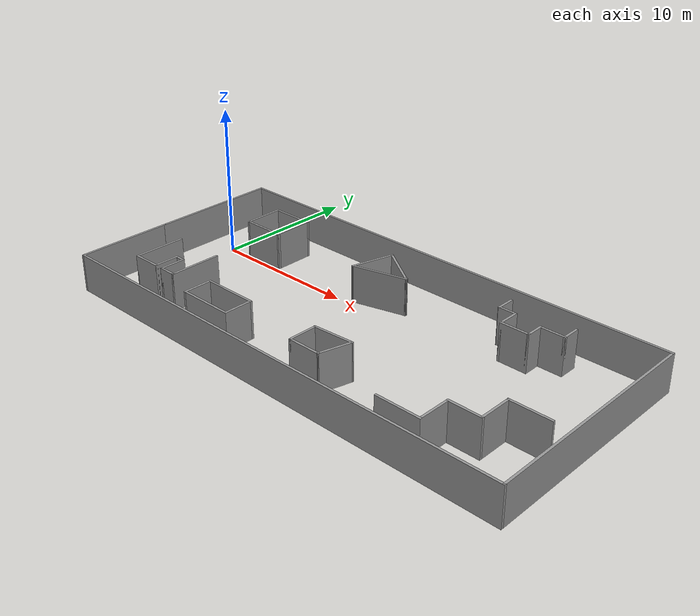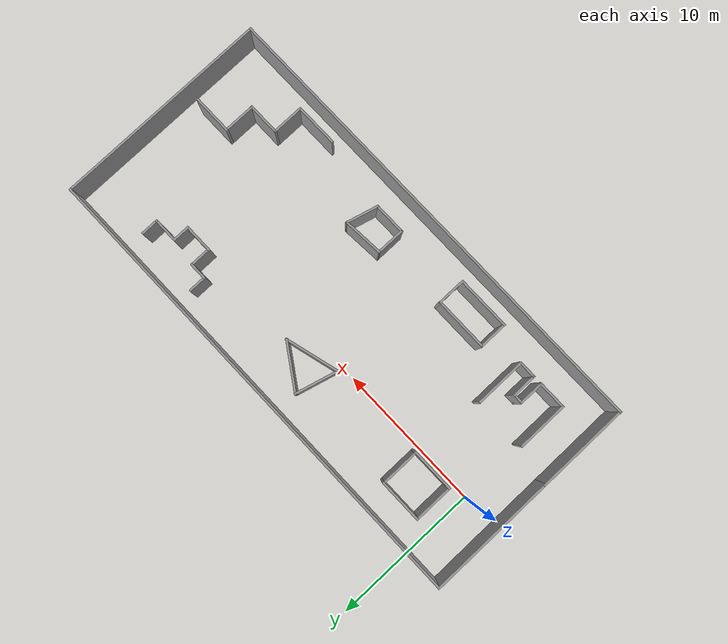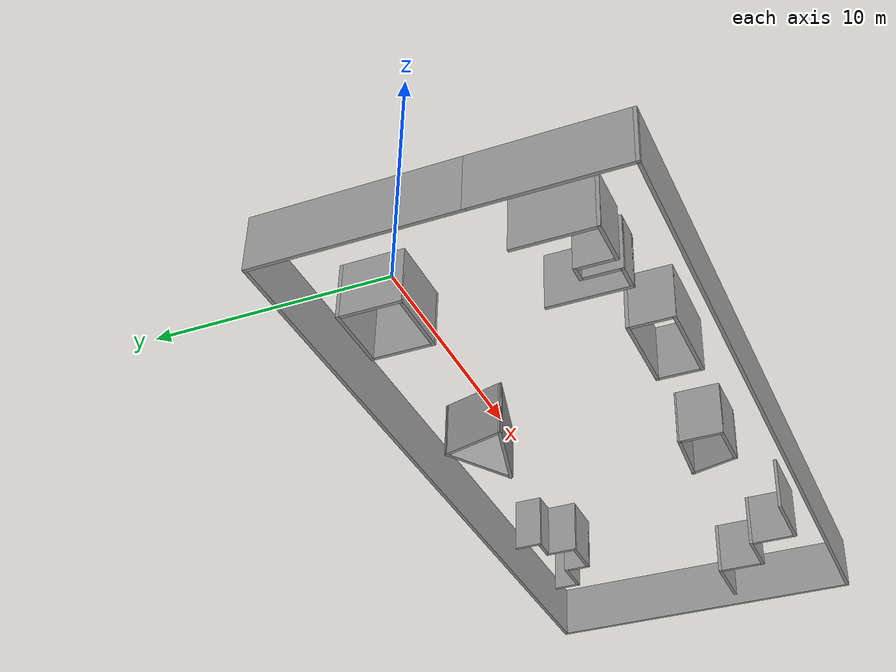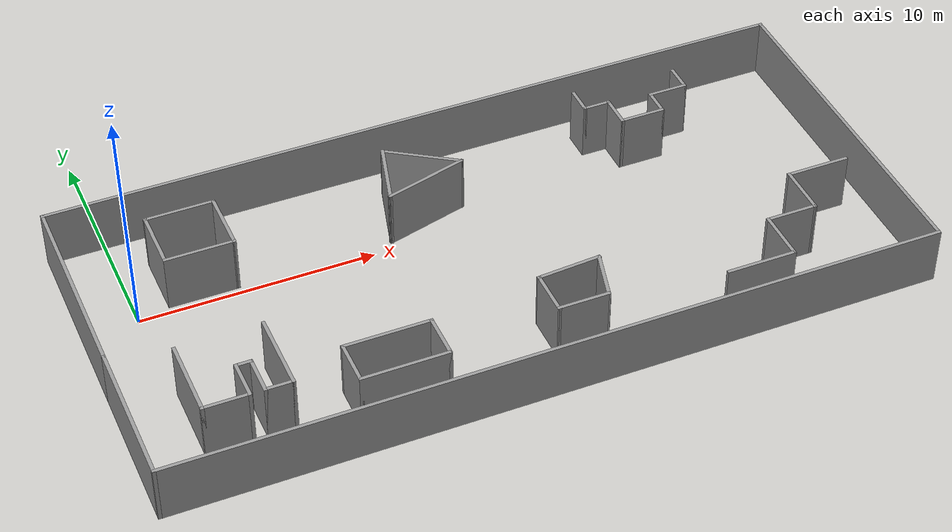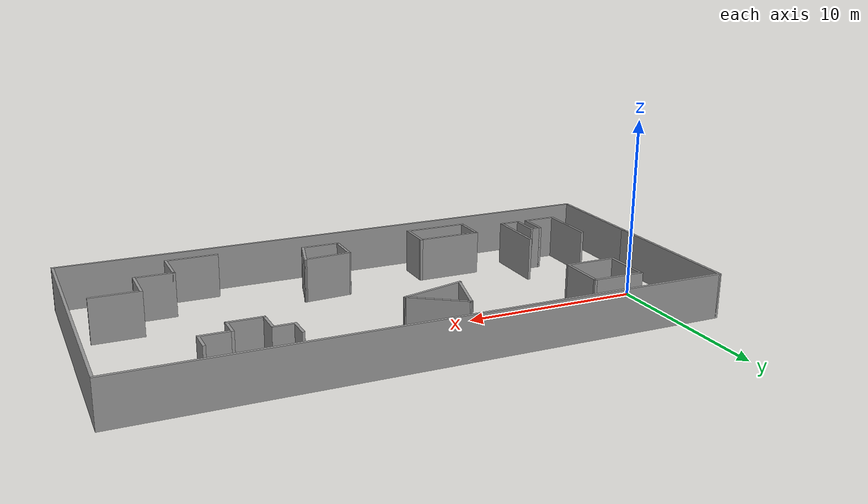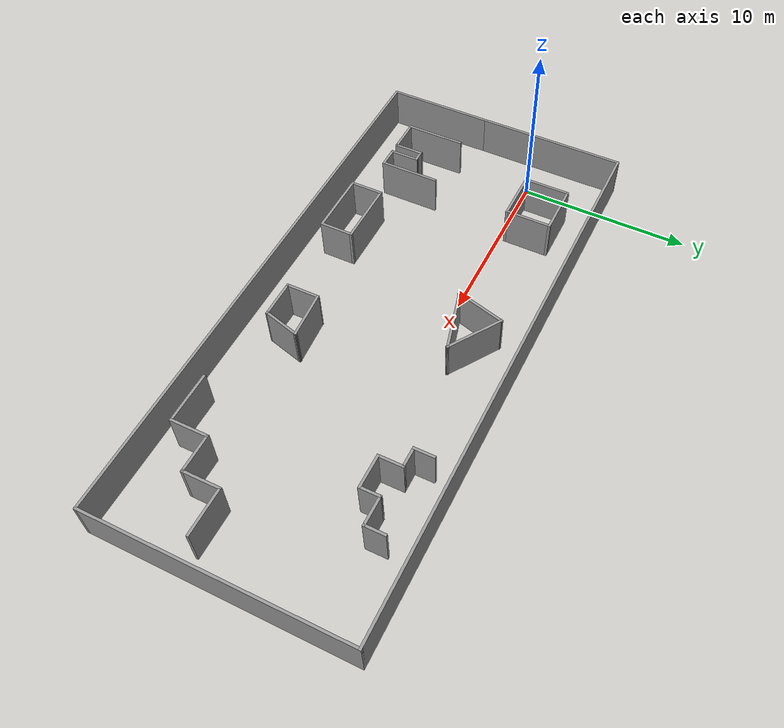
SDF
<?xml version='1.0'?>
<sdf version='1.7'>
  <model name='environment3'>
    <pose>13.8929 -2.66946 0 0 -0 0</pose>
    <link name='Wall_1'>
      <collision name='Wall_1_Collision'>
        <geometry>
          <box>
            <size>8.75 0.15 2.5</size>
          </box>
        </geometry>
        <pose>0 0 1.25 0 -0 0</pose>
      </collision>
      <visual name='Wall_1_Visual'>
        <pose>0 0 1.25 0 -0 0</pose>
        <geometry>
          <box>
            <size>8.75 0.15 2.5</size>
          </box>
        </geometry>
        <material>
          <script>
            <uri>file://media/materials/scripts/gazebo.material</uri>
            <name>Gazebo/Grey</name>
          </script>
          <ambient>1 1 1 1</ambient>
        </material>
        <meta>
          <layer>0</layer>
        </meta>
      </visual>
      <pose>-16.175 3.125 0 0 -0 1.5708</pose>
    </link>
    <link name='Wall_10'>
      <collision name='Wall_10_Collision'>
        <geometry>
          <box>
            <size>3 0.15 2.5</size>
          </box>
        </geometry>
        <pose>0 0 1.25 0 -0 0</pose>
      </collision>
      <visual name='Wall_10_Visual'>
        <pose>0 0 1.25 0 -0 0</pose>
        <geometry>
          <box>
            <size>3 0.15 2.5</size>
          </box>
        </geometry>
        <material>
          <script>
            <uri>file://media/materials/scripts/gazebo.material</uri>
            <name>Gazebo/Grey</name>
          </script>
          <ambient>1 1 1 1</ambient>
        </material>
        <meta>
          <layer>0</layer>
        </meta>
      </visual>
      <pose>-11.0474 5.63913 0 0 -0 3.14159</pose>
    </link>
    <link name='Wall_12'>
      <collision name='Wall_12_Collision'>
        <geometry>
          <box>
            <size>2 0.15 2.5</size>
          </box>
        </geometry>
        <pose>0 0 1.25 0 -0 0</pose>
      </collision>
      <visual name='Wall_12_Visual'>
        <pose>0 0 1.25 0 -0 0</pose>
        <geometry>
          <box>
            <size>2 0.15 2.5</size>
          </box>
        </geometry>
        <material>
          <script>
            <uri>file://media/materials/scripts/gazebo.material</uri>
            <name>Gazebo/Grey</name>
          </script>
          <ambient>1 1 1 1</ambient>
        </material>
        <meta>
          <layer>0</layer>
        </meta>
      </visual>
      <pose>-7.7735 -5.10241 0 0 -0 -1.5708</pose>
    </link>
    <link name='Wall_13'>
      <collision name='Wall_13_Collision'>
        <geometry>
          <box>
            <size>3.75 0.15 2.5</size>
          </box>
        </geometry>
        <pose>0 0 1.25 0 -0 0</pose>
      </collision>
      <visual name='Wall_13_Visual'>
        <pose>0 0 1.25 0 -0 0</pose>
        <geometry>
          <box>
            <size>3.75 0.15 2.5</size>
          </box>
        </geometry>
        <material>
          <script>
            <uri>file://media/materials/scripts/gazebo.material</uri>
            <name>Gazebo/Grey</name>
          </script>
          <ambient>1 1 1 1</ambient>
        </material>
        <meta>
          <layer>0</layer>
        </meta>
      </visual>
      <pose>-5.9735 -6.02741 0 0 -0 0</pose>
    </link>
    <link name='Wall_14'>
      <collision name='Wall_14_Collision'>
        <geometry>
          <box>
            <size>2 0.15 2.5</size>
          </box>
        </geometry>
        <pose>0 0 1.25 0 -0 0</pose>
      </collision>
      <visual name='Wall_14_Visual'>
        <pose>0 0 1.25 0 -0 0</pose>
        <geometry>
          <box>
            <size>2 0.15 2.5</size>
          </box>
        </geometry>
        <material>
          <script>
            <uri>file://media/materials/scripts/gazebo.material</uri>
            <name>Gazebo/Grey</name>
          </script>
          <ambient>1 1 1 1</ambient>
        </material>
        <meta>
          <layer>0</layer>
        </meta>
      </visual>
      <pose>-4.1735 -5.10241 0 0 -0 1.5708</pose>
    </link>
    <link name='Wall_15'>
      <collision name='Wall_15_Collision'>
        <geometry>
          <box>
            <size>3.75 0.15 2.5</size>
          </box>
        </geometry>
        <pose>0 0 1.25 0 -0 0</pose>
      </collision>
      <visual name='Wall_15_Visual'>
        <pose>0 0 1.25 0 -0 0</pose>
        <geometry>
          <box>
            <size>3.75 0.15 2.5</size>
          </box>
        </geometry>
        <material>
          <script>
            <uri>file://media/materials/scripts/gazebo.material</uri>
            <name>Gazebo/Grey</name>
          </script>
          <ambient>1 1 1 1</ambient>
        </material>
        <meta>
          <layer>0</layer>
        </meta>
      </visual>
      <pose>-5.9735 -4.17741 0 0 -0 3.14159</pose>
    </link>
    <link name='Wall_17'>
      <collision name='Wall_17_Collision'>
        <geometry>
          <box>
            <size>2 0.15 2.5</size>
          </box>
        </geometry>
        <pose>0 0 1.25 0 -0 0</pose>
      </collision>
      <visual name='Wall_17_Visual'>
        <pose>0 0 1.25 0 -0 0</pose>
        <geometry>
          <box>
            <size>2 0.15 2.5</size>
          </box>
        </geometry>
        <material>
          <script>
            <uri>file://media/materials/scripts/gazebo.material</uri>
            <name>Gazebo/Grey</name>
          </script>
          <ambient>1 1 1 1</ambient>
        </material>
        <meta>
          <layer>0</layer>
        </meta>
      </visual>
      <pose>0.554277 -4.54413 0 0 -0 -1.5708</pose>
    </link>
    <link name='Wall_18'>
      <collision name='Wall_18_Collision'>
        <geometry>
          <box>
            <size>2.25 0.15 2.5</size>
          </box>
        </geometry>
        <pose>0 0 1.25 0 -0 0</pose>
      </collision>
      <visual name='Wall_18_Visual'>
        <pose>0 0 1.25 0 -0 0</pose>
        <geometry>
          <box>
            <size>2.25 0.15 2.5</size>
          </box>
        </geometry>
        <material>
          <script>
            <uri>file://media/materials/scripts/gazebo.material</uri>
            <name>Gazebo/Grey</name>
          </script>
          <ambient>1 1 1 1</ambient>
        </material>
        <meta>
          <layer>0</layer>
        </meta>
      </visual>
      <pose>1.60428 -5.46913 0 0 -0 0</pose>
    </link>
    <link name='Wall_19'>
      <collision name='Wall_19_Collision'>
        <geometry>
          <box>
            <size>2.25 0.15 2.5</size>
          </box>
        </geometry>
        <pose>0 0 1.25 0 -0 0</pose>
      </collision>
      <visual name='Wall_19_Visual'>
        <pose>0 0 1.25 0 -0 0</pose>
        <geometry>
          <box>
            <size>2.25 0.15 2.5</size>
          </box>
        </geometry>
        <material>
          <script>
            <uri>file://media/materials/scripts/gazebo.material</uri>
            <name>Gazebo/Grey</name>
          </script>
          <ambient>1 1 1 1</ambient>
        </material>
        <meta>
          <layer>0</layer>
        </meta>
      </visual>
      <pose>2.92604 -4.45491 0 0 -0 1.309</pose>
    </link>
    <link name='Wall_2'>
      <collision name='Wall_2_Collision'>
        <geometry>
          <box>
            <size>32.5 0.15 2.5</size>
          </box>
        </geometry>
        <pose>0 0 1.25 0 -0 0</pose>
      </collision>
      <visual name='Wall_2_Visual'>
        <pose>0 0 1.25 0 -0 0</pose>
        <geometry>
          <box>
            <size>32.5 0.15 2.5</size>
          </box>
        </geometry>
        <material>
          <script>
            <uri>file://media/materials/scripts/gazebo.material</uri>
            <name>Gazebo/Grey</name>
          </script>
          <ambient>1 1 1 1</ambient>
        </material>
        <meta>
          <layer>0</layer>
        </meta>
      </visual>
      <pose>-0 7.425 0 0 -0 0</pose>
    </link>
    <link name='Wall_20'>
      <collision name='Wall_20_Collision'>
        <geometry>
          <box>
            <size>2.79954 0.15 2.5</size>
          </box>
        </geometry>
        <pose>0 0 1.25 0 -0 0</pose>
      </collision>
      <visual name='Wall_20_Visual'>
        <pose>0 0 1.25 0 -0 0</pose>
        <geometry>
          <box>
            <size>2.79954 0.15 2.5</size>
          </box>
        </geometry>
        <material>
          <script>
            <uri>file://media/materials/scripts/gazebo.material</uri>
            <name>Gazebo/Grey</name>
          </script>
          <ambient>1 1 1 1</ambient>
        </material>
        <meta>
          <layer>0</layer>
        </meta>
      </visual>
      <pose>1.87604 -3.5299 0 0 -0 -3.07419</pose>
    </link>
    <link name='Wall_22'>
      <collision name='Wall_22_Collision'>
        <geometry>
          <box>
            <size>3 0.15 2.5</size>
          </box>
        </geometry>
        <pose>0 0 1.25 0 -0 0</pose>
      </collision>
      <visual name='Wall_22_Visual'>
        <pose>0 0 1.25 0 -0 0</pose>
        <geometry>
          <box>
            <size>3 0.15 2.5</size>
          </box>
        </geometry>
        <material>
          <script>
            <uri>file://media/materials/scripts/gazebo.material</uri>
            <name>Gazebo/Grey</name>
          </script>
          <ambient>1 1 1 1</ambient>
        </material>
        <meta>
          <layer>0</layer>
        </meta>
      </visual>
      <pose>-2.60597 4.49531 0 0 -0 -1.8326</pose>
    </link>
    <link name='Wall_23'>
      <collision name='Wall_23_Collision'>
        <geometry>
          <box>
            <size>3.75 0.15 2.5</size>
          </box>
        </geometry>
        <pose>0 0 1.25 0 -0 0</pose>
      </collision>
      <visual name='Wall_23_Visual'>
        <pose>0 0 1.25 0 -0 0</pose>
        <geometry>
          <box>
            <size>3.75 0.15 2.5</size>
          </box>
        </geometry>
        <material>
          <script>
            <uri>file://media/materials/scripts/gazebo.material</uri>
            <name>Gazebo/Grey</name>
          </script>
          <ambient>1 1 1 1</ambient>
        </material>
        <meta>
          <layer>0</layer>
        </meta>
      </visual>
      <pose>-1.23612 3.58474 0 0 -0 0.261799</pose>
    </link>
    <link name='Wall_24'>
      <collision name='Wall_24_Collision'>
        <geometry>
          <box>
            <size>3.43976 0.15 2.5</size>
          </box>
        </geometry>
        <pose>0 0 1.25 0 -0 0</pose>
      </collision>
      <visual name='Wall_24_Visual'>
        <pose>0 0 1.25 0 -0 0</pose>
        <geometry>
          <box>
            <size>3.43976 0.15 2.5</size>
          </box>
        </geometry>
        <material>
          <script>
            <uri>file://media/materials/scripts/gazebo.material</uri>
            <name>Gazebo/Grey</name>
          </script>
          <ambient>1 1 1 1</ambient>
        </material>
        <meta>
          <layer>0</layer>
        </meta>
      </visual>
      <pose>-0.867309 4.96118 0 0 -0 2.55494</pose>
    </link>
    <link name='Wall_26'>
      <collision name='Wall_26_Collision'>
        <geometry>
          <box>
            <size>3.5 0.15 2.5</size>
          </box>
        </geometry>
        <pose>0 0 1.25 0 -0 0</pose>
      </collision>
      <visual name='Wall_26_Visual'>
        <pose>0 0 1.25 0 -0 0</pose>
        <geometry>
          <box>
            <size>3.5 0.15 2.5</size>
          </box>
        </geometry>
        <material>
          <script>
            <uri>file://media/materials/scripts/gazebo.material</uri>
            <name>Gazebo/Grey</name>
          </script>
          <ambient>1 1 1 1</ambient>
        </material>
        <meta>
          <layer>0</layer>
        </meta>
      </visual>
      <pose>-13.6355 -3.47942 0 0 -0 1.5708</pose>
    </link>
    <link name='Wall_28'>
      <collision name='Wall_28_Collision'>
        <geometry>
          <box>
            <size>2 0.15 2.5</size>
          </box>
        </geometry>
        <pose>0 0 1.25 0 -0 0</pose>
      </collision>
      <visual name='Wall_28_Visual'>
        <pose>0 0 1.25 0 -0 0</pose>
        <geometry>
          <box>
            <size>2 0.15 2.5</size>
          </box>
        </geometry>
        <material>
          <script>
            <uri>file://media/materials/scripts/gazebo.material</uri>
            <name>Gazebo/Grey</name>
          </script>
          <ambient>1 1 1 1</ambient>
        </material>
        <meta>
          <layer>0</layer>
        </meta>
      </visual>
      <pose>-12.7105 -5.15442 0 0 -0 0</pose>
    </link>
    <link name='Wall_29'>
      <collision name='Wall_29_Collision'>
        <geometry>
          <box>
            <size>1.75 0.15 2.5</size>
          </box>
        </geometry>
        <pose>0 0 1.25 0 -0 0</pose>
      </collision>
      <visual name='Wall_29_Visual'>
        <pose>0 0 1.25 0 -0 0</pose>
        <geometry>
          <box>
            <size>1.75 0.15 2.5</size>
          </box>
        </geometry>
        <material>
          <script>
            <uri>file://media/materials/scripts/gazebo.material</uri>
            <name>Gazebo/Grey</name>
          </script>
          <ambient>1 1 1 1</ambient>
        </material>
        <meta>
          <layer>0</layer>
        </meta>
      </visual>
      <pose>-11.7855 -4.35442 0 0 -0 1.5708</pose>
    </link>
    <link name='Wall_3'>
      <collision name='Wall_3_Collision'>
        <geometry>
          <box>
            <size>15 0.15 2.5</size>
          </box>
        </geometry>
        <pose>0 0 1.25 0 -0 0</pose>
      </collision>
      <visual name='Wall_3_Visual'>
        <pose>0 0 1.25 0 -0 0</pose>
        <geometry>
          <box>
            <size>15 0.15 2.5</size>
          </box>
        </geometry>
        <material>
          <script>
            <uri>file://media/materials/scripts/gazebo.material</uri>
            <name>Gazebo/Grey</name>
          </script>
          <ambient>1 1 1 1</ambient>
        </material>
        <meta>
          <layer>0</layer>
        </meta>
      </visual>
      <pose>16.175 0 0 0 -0 -1.5708</pose>
    </link>
    <link name='Wall_30'>
      <collision name='Wall_30_Collision'>
        <geometry>
          <box>
            <size>0.75 0.15 2.5</size>
          </box>
        </geometry>
        <pose>0 0 1.25 0 -0 0</pose>
      </collision>
      <visual name='Wall_30_Visual'>
        <pose>0 0 1.25 0 -0 0</pose>
        <geometry>
          <box>
            <size>0.75 0.15 2.5</size>
          </box>
        </geometry>
        <material>
          <script>
            <uri>file://media/materials/scripts/gazebo.material</uri>
            <name>Gazebo/Grey</name>
          </script>
          <ambient>1 1 1 1</ambient>
        </material>
        <meta>
          <layer>0</layer>
        </meta>
      </visual>
      <pose>-11.4855 -3.55442 0 0 -0 0</pose>
    </link>
    <link name='Wall_31'>
      <collision name='Wall_31_Collision'>
        <geometry>
          <box>
            <size>1.75 0.15 2.5</size>
          </box>
        </geometry>
        <pose>0 0 1.25 0 -0 0</pose>
      </collision>
      <visual name='Wall_31_Visual'>
        <pose>0 0 1.25 0 -0 0</pose>
        <geometry>
          <box>
            <size>1.75 0.15 2.5</size>
          </box>
        </geometry>
        <material>
          <script>
            <uri>file://media/materials/scripts/gazebo.material</uri>
            <name>Gazebo/Grey</name>
          </script>
          <ambient>1 1 1 1</ambient>
        </material>
        <meta>
          <layer>0</layer>
        </meta>
      </visual>
      <pose>-11.1855 -4.35442 0 0 -0 -1.5708</pose>
    </link>
    <link name='Wall_32'>
      <collision name='Wall_32_Collision'>
        <geometry>
          <box>
            <size>1.25 0.15 2.5</size>
          </box>
        </geometry>
        <pose>0 0 1.25 0 -0 0</pose>
      </collision>
      <visual name='Wall_32_Visual'>
        <pose>0 0 1.25 0 -0 0</pose>
        <geometry>
          <box>
            <size>1.25 0.15 2.5</size>
          </box>
        </geometry>
        <material>
          <script>
            <uri>file://media/materials/scripts/gazebo.material</uri>
            <name>Gazebo/Grey</name>
          </script>
          <ambient>1 1 1 1</ambient>
        </material>
        <meta>
          <layer>0</layer>
        </meta>
      </visual>
      <pose>-10.6355 -5.15442 0 0 -0 0</pose>
    </link>
    <link name='Wall_33'>
      <collision name='Wall_33_Collision'>
        <geometry>
          <box>
            <size>3.5 0.15 2.5</size>
          </box>
        </geometry>
        <pose>0 0 1.25 0 -0 0</pose>
      </collision>
      <visual name='Wall_33_Visual'>
        <pose>0 0 1.25 0 -0 0</pose>
        <geometry>
          <box>
            <size>3.5 0.15 2.5</size>
          </box>
        </geometry>
        <material>
          <script>
            <uri>file://media/materials/scripts/gazebo.material</uri>
            <name>Gazebo/Grey</name>
          </script>
          <ambient>1 1 1 1</ambient>
        </material>
        <meta>
          <layer>0</layer>
        </meta>
      </visual>
      <pose>-10.0855 -3.47942 0 0 -0 1.5708</pose>
    </link>
    <link name='Wall_35'>
      <collision name='Wall_35_Collision'>
        <geometry>
          <box>
            <size>1.25 0.15 2.5</size>
          </box>
        </geometry>
        <pose>0 0 1.25 0 -0 0</pose>
      </collision>
      <visual name='Wall_35_Visual'>
        <pose>0 0 1.25 0 -0 0</pose>
        <geometry>
          <box>
            <size>1.25 0.15 2.5</size>
          </box>
        </geometry>
        <material>
          <script>
            <uri>file://media/materials/scripts/gazebo.material</uri>
            <name>Gazebo/Grey</name>
          </script>
          <ambient>1 1 1 1</ambient>
        </material>
        <meta>
          <layer>0</layer>
        </meta>
      </visual>
      <pose>6.60238 5.69394 0 0 -0 -1.5708</pose>
    </link>
    <link name='Wall_36'>
      <collision name='Wall_36_Collision'>
        <geometry>
          <box>
            <size>1.25 0.15 2.5</size>
          </box>
        </geometry>
        <pose>0 0 1.25 0 -0 0</pose>
      </collision>
      <visual name='Wall_36_Visual'>
        <pose>0 0 1.25 0 -0 0</pose>
        <geometry>
          <box>
            <size>1.25 0.15 2.5</size>
          </box>
        </geometry>
        <material>
          <script>
            <uri>file://media/materials/scripts/gazebo.material</uri>
            <name>Gazebo/Grey</name>
          </script>
          <ambient>1 1 1 1</ambient>
        </material>
        <meta>
          <layer>0</layer>
        </meta>
      </visual>
      <pose>7.15239 5.14394 0 0 -0 0</pose>
    </link>
    <link name='Wall_37'>
      <collision name='Wall_37_Collision'>
        <geometry>
          <box>
            <size>1.5 0.15 2.5</size>
          </box>
        </geometry>
        <pose>0 0 1.25 0 -0 0</pose>
      </collision>
      <visual name='Wall_37_Visual'>
        <pose>0 0 1.25 0 -0 0</pose>
        <geometry>
          <box>
            <size>1.5 0.15 2.5</size>
          </box>
        </geometry>
        <material>
          <script>
            <uri>file://media/materials/scripts/gazebo.material</uri>
            <name>Gazebo/Grey</name>
          </script>
          <ambient>1 1 1 1</ambient>
        </material>
        <meta>
          <layer>0</layer>
        </meta>
      </visual>
      <pose>7.70239 4.46894 0 0 -0 -1.5708</pose>
    </link>
    <link name='Wall_38'>
      <collision name='Wall_38_Collision'>
        <geometry>
          <box>
            <size>2 0.15 2.5</size>
          </box>
        </geometry>
        <pose>0 0 1.25 0 -0 0</pose>
      </collision>
      <visual name='Wall_38_Visual'>
        <pose>0 0 1.25 0 -0 0</pose>
        <geometry>
          <box>
            <size>2 0.15 2.5</size>
          </box>
        </geometry>
        <material>
          <script>
            <uri>file://media/materials/scripts/gazebo.material</uri>
            <name>Gazebo/Grey</name>
          </script>
          <ambient>1 1 1 1</ambient>
        </material>
        <meta>
          <layer>0</layer>
        </meta>
      </visual>
      <pose>8.62739 3.79394 0 0 -0 0</pose>
    </link>
    <link name='Wall_39'>
      <collision name='Wall_39_Collision'>
        <geometry>
          <box>
            <size>1.25 0.15 2.5</size>
          </box>
        </geometry>
        <pose>0 0 1.25 0 -0 0</pose>
      </collision>
      <visual name='Wall_39_Visual'>
        <pose>0 0 1.25 0 -0 0</pose>
        <geometry>
          <box>
            <size>1.25 0.15 2.5</size>
          </box>
        </geometry>
        <material>
          <script>
            <uri>file://media/materials/scripts/gazebo.material</uri>
            <name>Gazebo/Grey</name>
          </script>
          <ambient>1 1 1 1</ambient>
        </material>
        <meta>
          <layer>0</layer>
        </meta>
      </visual>
      <pose>9.55239 4.34394 0 0 -0 1.5708</pose>
    </link>
    <link name='Wall_4'>
      <collision name='Wall_4_Collision'>
        <geometry>
          <box>
            <size>32.5 0.15 2.5</size>
          </box>
        </geometry>
        <pose>0 0 1.25 0 -0 0</pose>
      </collision>
      <visual name='Wall_4_Visual'>
        <pose>0 0 1.25 0 -0 0</pose>
        <geometry>
          <box>
            <size>32.5 0.15 2.5</size>
          </box>
        </geometry>
        <material>
          <script>
            <uri>file://media/materials/scripts/gazebo.material</uri>
            <name>Gazebo/Grey</name>
          </script>
          <ambient>1 1 1 1</ambient>
        </material>
        <meta>
          <layer>0</layer>
        </meta>
      </visual>
      <pose>-0 -7.425 0 0 -0 3.14159</pose>
    </link>
    <link name='Wall_40'>
      <collision name='Wall_40_Collision'>
        <geometry>
          <box>
            <size>1.75 0.15 2.5</size>
          </box>
        </geometry>
        <pose>0 0 1.25 0 -0 0</pose>
      </collision>
      <visual name='Wall_40_Visual'>
        <pose>0 0 1.25 0 -0 0</pose>
        <geometry>
          <box>
            <size>1.75 0.15 2.5</size>
          </box>
        </geometry>
        <material>
          <script>
            <uri>file://media/materials/scripts/gazebo.material</uri>
            <name>Gazebo/Grey</name>
          </script>
          <ambient>1 1 1 1</ambient>
        </material>
        <meta>
          <layer>0</layer>
        </meta>
      </visual>
      <pose>10.3524 4.89394 0 0 -0 0</pose>
    </link>
    <link name='Wall_41'>
      <collision name='Wall_41_Collision'>
        <geometry>
          <box>
            <size>1.25 0.15 2.5</size>
          </box>
        </geometry>
        <pose>0 0 1.25 0 -0 0</pose>
      </collision>
      <visual name='Wall_41_Visual'>
        <pose>0 0 1.25 0 -0 0</pose>
        <geometry>
          <box>
            <size>1.25 0.15 2.5</size>
          </box>
        </geometry>
        <material>
          <script>
            <uri>file://media/materials/scripts/gazebo.material</uri>
            <name>Gazebo/Grey</name>
          </script>
          <ambient>1 1 1 1</ambient>
        </material>
        <meta>
          <layer>0</layer>
        </meta>
      </visual>
      <pose>11.1524 5.44394 0 0 -0 1.5708</pose>
    </link>
    <link name='Wall_45'>
      <collision name='Wall_45_Collision'>
        <geometry>
          <box>
            <size>2.75 0.15 2.5</size>
          </box>
        </geometry>
        <pose>0 0 1.25 0 -0 0</pose>
      </collision>
      <visual name='Wall_45_Visual'>
        <pose>0 0 1.25 0 -0 0</pose>
        <geometry>
          <box>
            <size>2.75 0.15 2.5</size>
          </box>
        </geometry>
        <material>
          <script>
            <uri>file://media/materials/scripts/gazebo.material</uri>
            <name>Gazebo/Grey</name>
          </script>
          <ambient>1 1 1 1</ambient>
        </material>
        <meta>
          <layer>0</layer>
        </meta>
      </visual>
      <pose>13.7374 -2.01286 0 0 -0 3.14159</pose>
    </link>
    <link name='Wall_46'>
      <collision name='Wall_46_Collision'>
        <geometry>
          <box>
            <size>2.25 0.15 2.5</size>
          </box>
        </geometry>
        <pose>0 0 1.25 0 -0 0</pose>
      </collision>
      <visual name='Wall_46_Visual'>
        <pose>0 0 1.25 0 -0 0</pose>
        <geometry>
          <box>
            <size>2.25 0.15 2.5</size>
          </box>
        </geometry>
        <material>
          <script>
            <uri>file://media/materials/scripts/gazebo.material</uri>
            <name>Gazebo/Grey</name>
          </script>
          <ambient>1 1 1 1</ambient>
        </material>
        <meta>
          <layer>0</layer>
        </meta>
      </visual>
      <pose>12.4374 -3.06286 0 0 -0 -1.5708</pose>
    </link>
    <link name='Wall_47'>
      <collision name='Wall_47_Collision'>
        <geometry>
          <box>
            <size>2.25 0.15 2.5</size>
          </box>
        </geometry>
        <pose>0 0 1.25 0 -0 0</pose>
      </collision>
      <visual name='Wall_47_Visual'>
        <pose>0 0 1.25 0 -0 0</pose>
        <geometry>
          <box>
            <size>2.25 0.15 2.5</size>
          </box>
        </geometry>
        <material>
          <script>
            <uri>file://media/materials/scripts/gazebo.material</uri>
            <name>Gazebo/Grey</name>
          </script>
          <ambient>1 1 1 1</ambient>
        </material>
        <meta>
          <layer>0</layer>
        </meta>
      </visual>
      <pose>11.3874 -4.11286 0 0 -0 3.14159</pose>
    </link>
    <link name='Wall_48'>
      <collision name='Wall_48_Collision'>
        <geometry>
          <box>
            <size>2.25 0.15 2.5</size>
          </box>
        </geometry>
        <pose>0 0 1.25 0 -0 0</pose>
      </collision>
      <visual name='Wall_48_Visual'>
        <pose>0 0 1.25 0 -0 0</pose>
        <geometry>
          <box>
            <size>2.25 0.15 2.5</size>
          </box>
        </geometry>
        <material>
          <script>
            <uri>file://media/materials/scripts/gazebo.material</uri>
            <name>Gazebo/Grey</name>
          </script>
          <ambient>1 1 1 1</ambient>
        </material>
        <meta>
          <layer>0</layer>
        </meta>
      </visual>
      <pose>10.3374 -5.16286 0 0 -0 -1.5708</pose>
    </link>
    <link name='Wall_49'>
      <collision name='Wall_49_Collision'>
        <geometry>
          <box>
            <size>3 0.15 2.5</size>
          </box>
        </geometry>
        <pose>0 0 1.25 0 -0 0</pose>
      </collision>
      <visual name='Wall_49_Visual'>
        <pose>0 0 1.25 0 -0 0</pose>
        <geometry>
          <box>
            <size>3 0.15 2.5</size>
          </box>
        </geometry>
        <material>
          <script>
            <uri>file://media/materials/scripts/gazebo.material</uri>
            <name>Gazebo/Grey</name>
          </script>
          <ambient>1 1 1 1</ambient>
        </material>
        <meta>
          <layer>0</layer>
        </meta>
      </visual>
      <pose>8.91236 -6.21286 0 0 -0 3.14159</pose>
    </link>
    <link name='Wall_5'>
      <collision name='Wall_5_Collision'>
        <geometry>
          <box>
            <size>6.4 0.15 2.5</size>
          </box>
        </geometry>
        <pose>0 0 1.25 0 -0 0</pose>
      </collision>
      <visual name='Wall_5_Visual'>
        <pose>0 0 1.25 0 -0 0</pose>
        <geometry>
          <box>
            <size>6.4 0.15 2.5</size>
          </box>
        </geometry>
        <material>
          <script>
            <uri>file://media/materials/scripts/gazebo.material</uri>
            <name>Gazebo/Grey</name>
          </script>
          <ambient>1 1 1 1</ambient>
        </material>
        <meta>
          <layer>0</layer>
        </meta>
      </visual>
      <pose>-16.175 -4.3 0 0 -0 1.5708</pose>
    </link>
    <link name='Wall_7'>
      <collision name='Wall_7_Collision'>
        <geometry>
          <box>
            <size>2.75 0.15 2.5</size>
          </box>
        </geometry>
        <pose>0 0 1.25 0 -0 0</pose>
      </collision>
      <visual name='Wall_7_Visual'>
        <pose>0 0 1.25 0 -0 0</pose>
        <geometry>
          <box>
            <size>2.75 0.15 2.5</size>
          </box>
        </geometry>
        <material>
          <script>
            <uri>file://media/materials/scripts/gazebo.material</uri>
            <name>Gazebo/Grey</name>
          </script>
          <ambient>1 1 1 1</ambient>
        </material>
        <meta>
          <layer>0</layer>
        </meta>
      </visual>
      <pose>-12.4724 4.33913 0 0 -0 -1.5708</pose>
    </link>
    <link name='Wall_8'>
      <collision name='Wall_8_Collision'>
        <geometry>
          <box>
            <size>3 0.15 2.5</size>
          </box>
        </geometry>
        <pose>0 0 1.25 0 -0 0</pose>
      </collision>
      <visual name='Wall_8_Visual'>
        <pose>0 0 1.25 0 -0 0</pose>
        <geometry>
          <box>
            <size>3 0.15 2.5</size>
          </box>
        </geometry>
        <material>
          <script>
            <uri>file://media/materials/scripts/gazebo.material</uri>
            <name>Gazebo/Grey</name>
          </script>
          <ambient>1 1 1 1</ambient>
        </material>
        <meta>
          <layer>0</layer>
        </meta>
      </visual>
      <pose>-11.0474 3.03913 0 0 -0 0</pose>
    </link>
    <link name='Wall_9'>
      <collision name='Wall_9_Collision'>
        <geometry>
          <box>
            <size>2.75 0.15 2.5</size>
          </box>
        </geometry>
        <pose>0 0 1.25 0 -0 0</pose>
      </collision>
      <visual name='Wall_9_Visual'>
        <pose>0 0 1.25 0 -0 0</pose>
        <geometry>
          <box>
            <size>2.75 0.15 2.5</size>
          </box>
        </geometry>
        <material>
          <script>
            <uri>file://media/materials/scripts/gazebo.material</uri>
            <name>Gazebo/Grey</name>
          </script>
          <ambient>1 1 1 1</ambient>
        </material>
        <meta>
          <layer>0</layer>
        </meta>
      </visual>
      <pose>-9.62242 4.33913 0 0 -0 1.5708</pose>
    </link>
    <static>1</static>
  </model>
</sdf>
